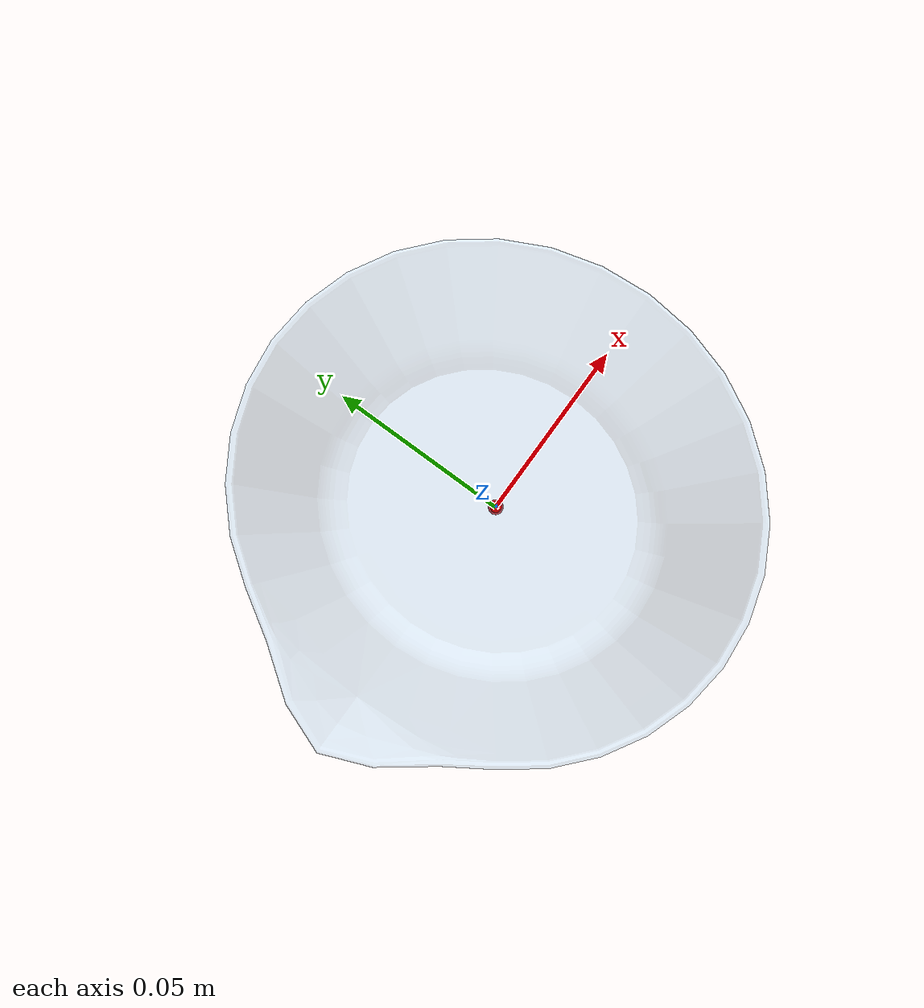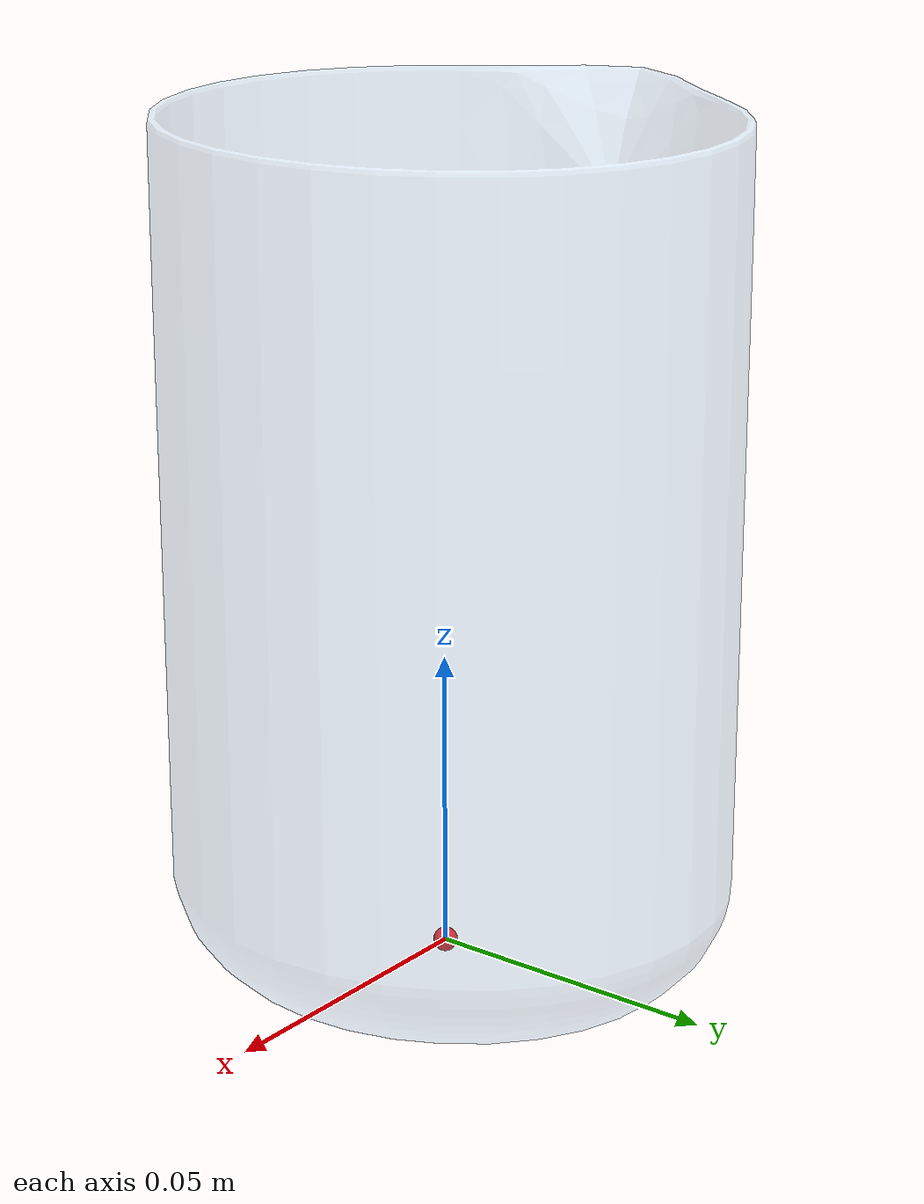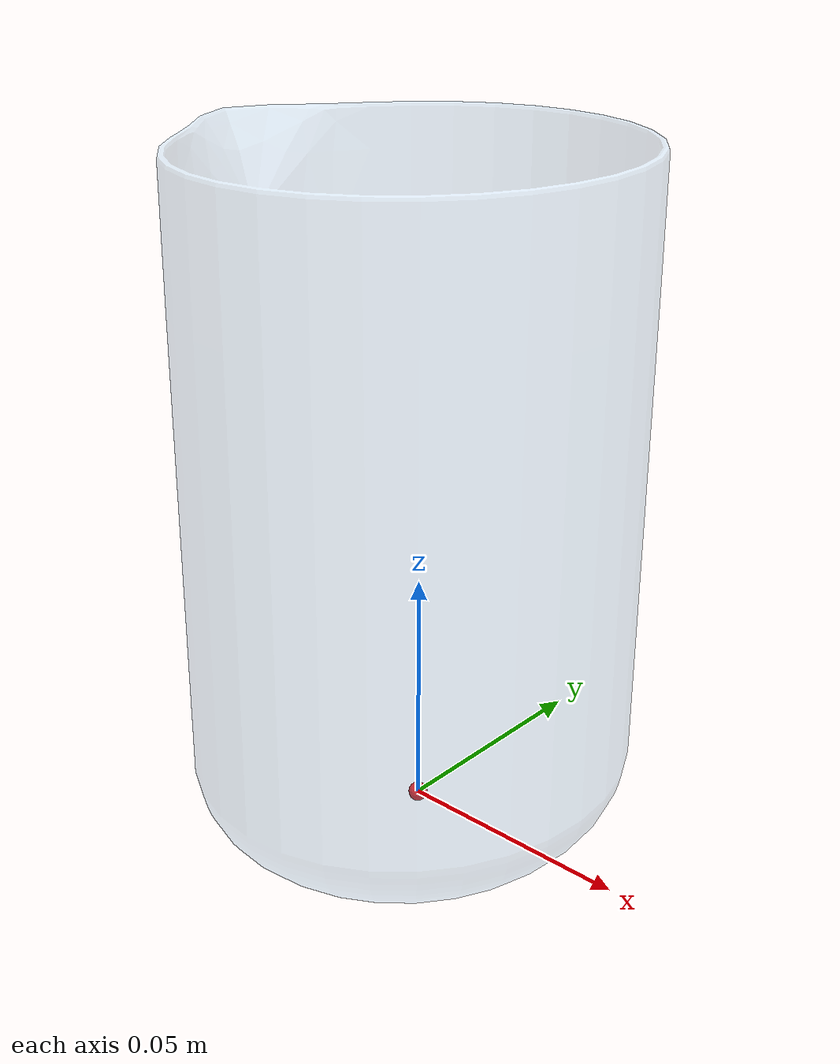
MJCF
<mujoco model="Beaker">

  <compiler angle="radian" meshdir="../../assets" />

  <option gravity="0 0 -9.81" />

  <asset>

    <mesh name="beaker_mesh" file="Beaker/base.obj" scale="2.600000 2.600000 2.800000" />
  </asset>

  <worldbody>
    <geom name="origin_marker" type="sphere" pos="0.000000 0.000000 0.000000" size="0.002000" rgba="1 0 0 1" />
    <body name="beaker" quat="0.7071 0.7071 0 0" pos="0.290000 0.000000 -0.000000">

      <geom name="beaker_visual" type="mesh" mesh="beaker_mesh" rgba="0.65 0.85 1.0 0.3" contype="0" conaffinity="0" />

      <geom name="glass_sheet_collision_2" type="cylinder" size="0.042800 0.004000" pos="-0.293000 0.004900 -0.000000" euler="1.5708 0 0" contype="1" conaffinity="1" friction="0.6 0.2 0.001" rgba="0 0 0 0" />
      <geom name="ring_1" type="box" size="0.020000 0.070000 0.002000" pos="-0.291000 0.072000 -0.044000" contype="1" conaffinity="1" rgba="0 0 0 0" />
      <geom name="ring_2" type="box" size="0.020000 0.070000 0.002000" pos="-0.291000 0.072000 0.044000" contype="1" conaffinity="1" rgba="0 0 0 0" />
      <geom name="ring_3" type="box" size="0.020000 0.070000 0.002000" pos="-0.250000 0.072000 -0.000000" contype="1" conaffinity="1" euler="0 1.5708 0" rgba="0 0 0 0" />
      <geom name="ring_4" type="box" size="0.020000 0.070000 0.002000" pos="-0.340000 0.072000 -0.000000" contype="1" conaffinity="1" euler="0 1.5708 0" rgba="0 0 0 0" />
      <geom name="ring_5" type="box" size="0.020000 0.070000 0.002000" pos="-0.326800 0.072000 -0.030600" contype="1" conaffinity="1" euler="0 0.7854 0" rgba="0 0 0 0" />
      <geom name="ring_6" type="box" size="0.020000 0.070000 0.002000" pos="-0.262000 0.072000 0.030600" contype="1" conaffinity="1" euler="0 0.7854 0" rgba="0 0 0 0" />
      <geom name="ring_7" type="box" size="0.020000 0.070000 0.002000" pos="-0.326800 0.072000 0.030600" contype="1" conaffinity="1" euler="0 -0.7854 0" rgba="0 0 0 0" />
      <geom name="ring_8" type="box" size="0.020000 0.070000 0.002000" pos="-0.262000 0.072000 -0.030600" contype="1" conaffinity="1" euler="0 -0.7854 0" rgba="0 0 0 0" />
    </body>
  </worldbody>
</mujoco>
